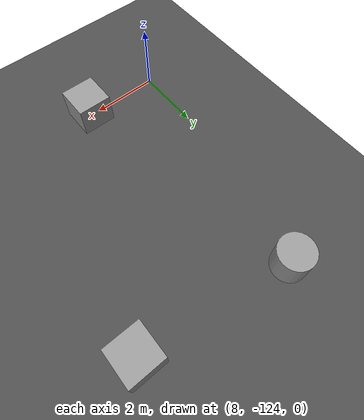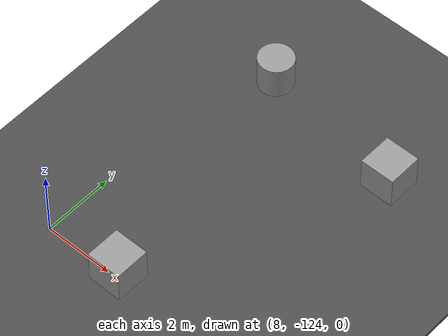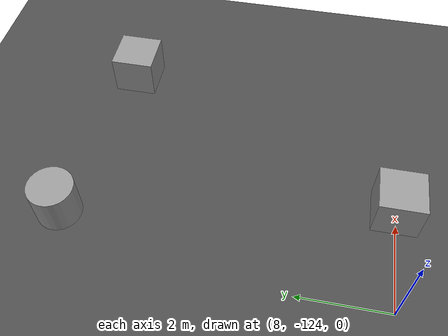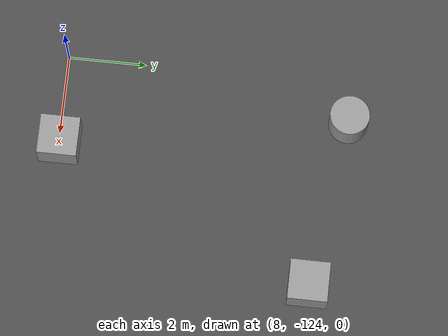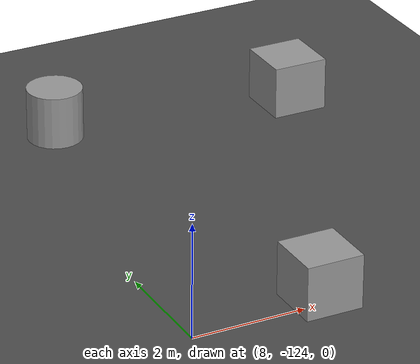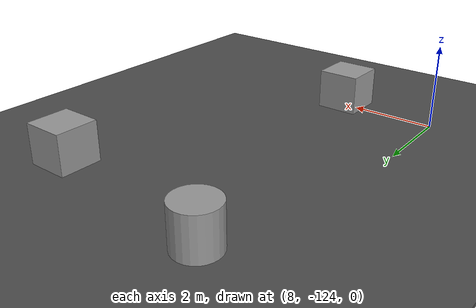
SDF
<sdf version="1.7">
 <world name="default">
  <model name="ground_plane">
   <static>1</static>
   <link name="link">
    <collision name="collision">
     <geometry><plane><normal>0 0 1</normal><size>100 100</size></plane></geometry>
     <surface><friction><ode><mu>100</mu><mu2>50</mu2></ode></friction></surface>
    </collision>
    <visual name="visual">
     <cast_shadows>0</cast_shadows>
     <geometry><plane><normal>0 0 1</normal><size>100 100</size></plane></geometry>
     <material>
      <script><uri>file://media/materials/scripts/gazebo.material</uri><name>Gazebo/Grey</name></script>
     </material>
    </visual>
   </link>
  </model>
  <model name="obstaculos">
   <link name="link_23">
    <inertial>
     <mass>1</mass>
     <inertia>
      <ixx>0.166667</ixx>
      <ixy>0</ixy>
      <ixz>0</ixz>
      <iyy>0.166667</iyy>
      <iyz>0</iyz>
      <izz>0.166667</izz>
     </inertia>
    </inertial>
    <pose>-27.5481 -64.2829 0 0 -0 0</pose>
    <visual name="visual">
     <geometry><box><size>1 1 1</size></box></geometry>
     <material>
      <lighting>1</lighting>
      <script><uri>file://media/materials/scripts/gazebo.material</uri><name>Gazebo/Grey</name></script>
      <shader type="pixel"/>
     </material>
    </visual>
    <collision name="collision">
     <geometry><box><size>1 1 1</size></box></geometry>
     <surface>
      <friction>
       <ode><mu>1</mu><mu2>1</mu2><fdir1>0 0 0</fdir1><slip1>0</slip1><slip2>0</slip2></ode>
       <torsional>
        <coefficient>1</coefficient>
        <patch_radius>0</patch_radius>
        <surface_radius>0</surface_radius>
        <use_patch_radius>1</use_patch_radius>
        <ode><slip>0</slip></ode>
       </torsional>
      </friction>
      <bounce><restitution_coefficient>0</restitution_coefficient><threshold>1e+06</threshold></bounce>
      <contact>
       <collide_without_contact>0</collide_without_contact>
       <collide_without_contact_bitmask>1</collide_without_contact_bitmask>
       <collide_bitmask>1</collide_bitmask>
       <ode>
        <soft_cfm>0</soft_cfm>
        <soft_erp>0.2</soft_erp>
        <kp>1e+13</kp>
        <kd>1</kd>
        <max_vel>0.01</max_vel>
        <min_depth>0</min_depth>
       </ode>
       <bullet>
        <split_impulse>1</split_impulse>
        <split_impulse_penetration_threshold>-0.01</split_impulse_penetration_threshold>
        <soft_cfm>0</soft_cfm>
        <soft_erp>0.2</soft_erp>
        <kp>1e+13</kp>
        <kd>1</kd>
       </bullet>
      </contact>
     </surface>
    </collision>
   </link>
   <link name="link_24">
    <inertial>
     <mass>1</mass>
     <inertia>
      <ixx>0.166667</ixx>
      <ixy>0</ixy>
      <ixz>0</ixz>
      <iyy>0.166667</iyy>
      <iyz>0</iyz>
      <izz>0.166667</izz>
     </inertia>
    </inertial>
    <pose>-30.5685 -70.8884 0 0 -0 0</pose>
    <visual name="visual">
     <geometry><box><size>1 1 1</size></box></geometry>
     <material>
      <lighting>1</lighting>
      <script><uri>file://media/materials/scripts/gazebo.material</uri><name>Gazebo/Grey</name></script>
      <shader type="pixel"/>
     </material>
    </visual>
    <collision name="collision">
     <geometry><box><size>1 1 1</size></box></geometry>
     <surface>
      <friction>
       <ode><mu>1</mu><mu2>1</mu2><fdir1>0 0 0</fdir1><slip1>0</slip1><slip2>0</slip2></ode>
       <torsional>
        <coefficient>1</coefficient>
        <patch_radius>0</patch_radius>
        <surface_radius>0</surface_radius>
        <use_patch_radius>1</use_patch_radius>
        <ode><slip>0</slip></ode>
       </torsional>
      </friction>
      <bounce><restitution_coefficient>0</restitution_coefficient><threshold>1e+06</threshold></bounce>
      <contact>
       <collide_without_contact>0</collide_without_contact>
       <collide_without_contact_bitmask>1</collide_without_contact_bitmask>
       <collide_bitmask>1</collide_bitmask>
       <ode>
        <soft_cfm>0</soft_cfm>
        <soft_erp>0.2</soft_erp>
        <kp>1e+13</kp>
        <kd>1</kd>
        <max_vel>0.01</max_vel>
        <min_depth>0</min_depth>
       </ode>
       <bullet>
        <split_impulse>1</split_impulse>
        <split_impulse_penetration_threshold>-0.01</split_impulse_penetration_threshold>
        <soft_cfm>0</soft_cfm>
        <soft_erp>0.2</soft_erp>
        <kp>1e+13</kp>
        <kd>1</kd>
       </bullet>
      </contact>
     </surface>
    </collision>
   </link>
   <link name="link_25">
    <inertial>
     <mass>1</mass>
     <inertia><ixx>0.145833</ixx><ixy>0</ixy><ixz>0</ixz><iyy>0.145833</iyy><iyz>0</iyz><izz>0.125</izz></inertia>
    </inertial>
    <pose>-31.8533 -63.6673 0 0 -0 0</pose>
    <visual name="visual">
     <geometry><cylinder><radius>0.5</radius><length>1</length></cylinder></geometry>
     <material>
      <lighting>1</lighting>
      <script><uri>file://media/materials/scripts/gazebo.material</uri><name>Gazebo/Grey</name></script>
      <shader type="pixel"/>
     </material>
    </visual>
    <collision name="collision">
     <geometry><cylinder><radius>0.5</radius><length>1</length></cylinder></geometry>
     <surface>
      <friction>
       <ode><mu>1</mu><mu2>1</mu2><fdir1>0 0 0</fdir1><slip1>0</slip1><slip2>0</slip2></ode>
       <torsional>
        <coefficient>1</coefficient>
        <patch_radius>0</patch_radius>
        <surface_radius>0</surface_radius>
        <use_patch_radius>1</use_patch_radius>
        <ode><slip>0</slip></ode>
       </torsional>
      </friction>
      <bounce><restitution_coefficient>0</restitution_coefficient><threshold>1e+06</threshold></bounce>
      <contact>
       <collide_without_contact>0</collide_without_contact>
       <collide_without_contact_bitmask>1</collide_without_contact_bitmask>
       <collide_bitmask>1</collide_bitmask>
       <ode>
        <soft_cfm>0</soft_cfm>
        <soft_erp>0.2</soft_erp>
        <kp>1e+13</kp>
        <kd>1</kd>
        <max_vel>0.01</max_vel>
        <min_depth>0</min_depth>
       </ode>
       <bullet>
        <split_impulse>1</split_impulse>
        <split_impulse_penetration_threshold>-0.01</split_impulse_penetration_threshold>
        <soft_cfm>0</soft_cfm>
        <soft_erp>0.2</soft_erp>
        <kp>1e+13</kp>
        <kd>1</kd>
       </bullet>
      </contact>
     </surface>
    </collision>
   </link>
   <static>0</static>
   <pose>41.0394 -53.1358 0.499893 -6e-06 5e-06 -0.002479</pose>
  </model>
  <model name="asphalt_plane">
   <link name="link">
    <inertial>
     <mass>1e+23</mass>
     <inertia>
      <ixx>2.07641e+27</ixx>
      <ixy>0</ixy>
      <ixz>0</ixz>
      <iyy>2.7889e+27</iyy>
      <iyz>0</iyz>
      <izz>4.86531e+27</izz>
     </inertia>
    </inertial>
    <visual name="visual">
     <cast_shadows>0</cast_shadows>
     <geometry><box><size>578.505 499.168 0.1</size></box></geometry>
     <material>
      <script>
       <uri>model://asphalt_plane/materials/scripts</uri>
       <uri>model://asphalt_plane/materials/textures</uri>
       <name>vrc/asphalt</name>
      </script>
      <shader type="pixel"><normal_map>__default__</normal_map></shader>
      <ambient>0.5 0.5 0.5 1</ambient>
      <diffuse>0.5 0.5 0.5 1</diffuse>
      <specular>0.2 0.2 0.2 1</specular>
      <emissive>0 0 0 1</emissive>
     </material>
    </visual>
    <collision name="collision">
     <geometry><box><size>578.505 499.168 0.1</size></box></geometry>
     <surface>
      <friction>
       <ode><mu>1</mu><mu2>1</mu2><fdir1>0 0 0</fdir1><slip1>0</slip1><slip2>0</slip2></ode>
       <torsional>
        <coefficient>1</coefficient>
        <patch_radius>0</patch_radius>
        <surface_radius>0</surface_radius>
        <use_patch_radius>1</use_patch_radius>
        <ode><slip>0</slip></ode>
       </torsional>
      </friction>
      <bounce><restitution_coefficient>0</restitution_coefficient><threshold>1e+06</threshold></bounce>
      <contact>
       <collide_without_contact>0</collide_without_contact>
       <collide_without_contact_bitmask>1</collide_without_contact_bitmask>
       <collide_bitmask>1</collide_bitmask>
       <ode>
        <soft_cfm>0</soft_cfm>
        <soft_erp>0.2</soft_erp>
        <kp>1e+13</kp>
        <kd>1</kd>
        <max_vel>0.01</max_vel>
        <min_depth>0</min_depth>
       </ode>
       <bullet>
        <split_impulse>1</split_impulse>
        <split_impulse_penetration_threshold>-0.01</split_impulse_penetration_threshold>
        <soft_cfm>0</soft_cfm>
        <soft_erp>0.2</soft_erp>
        <kp>1e+13</kp>
        <kd>1</kd>
       </bullet>
      </contact>
     </surface>
    </collision>
   </link>
   <static>1</static>
   <pose>0.107557 -0.074396 0 0 -0 0</pose>
  </model>
 </world>
</sdf>
